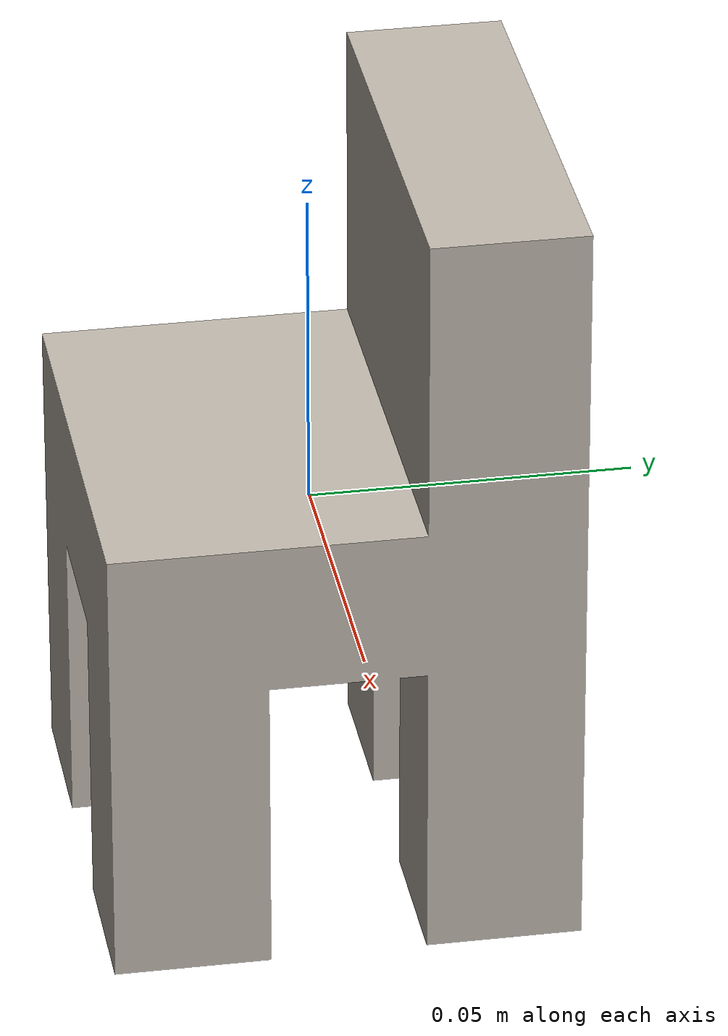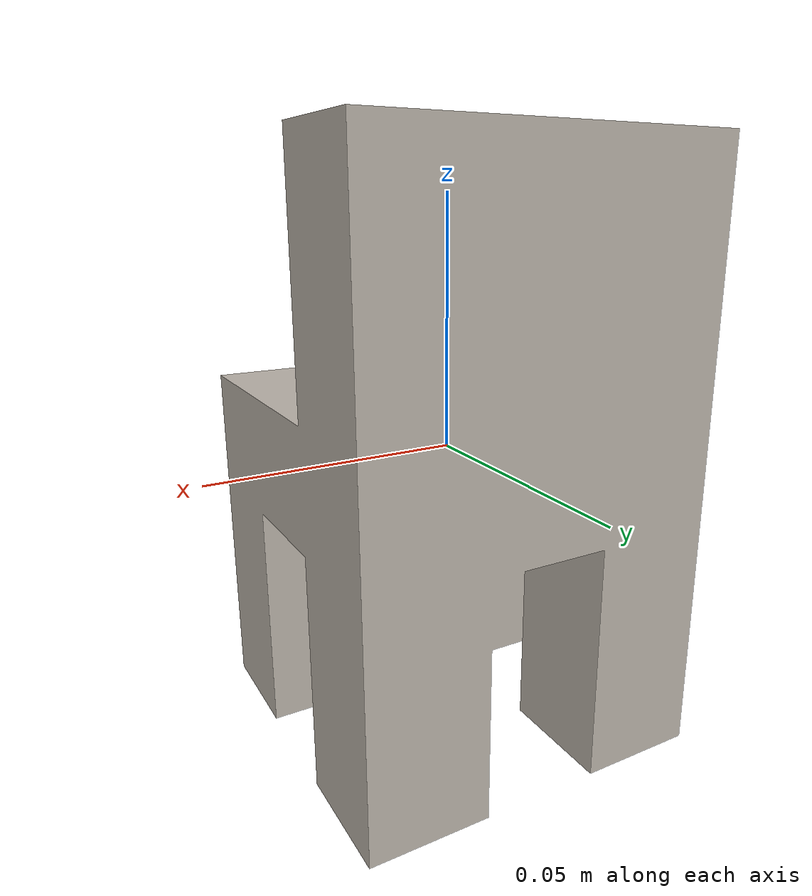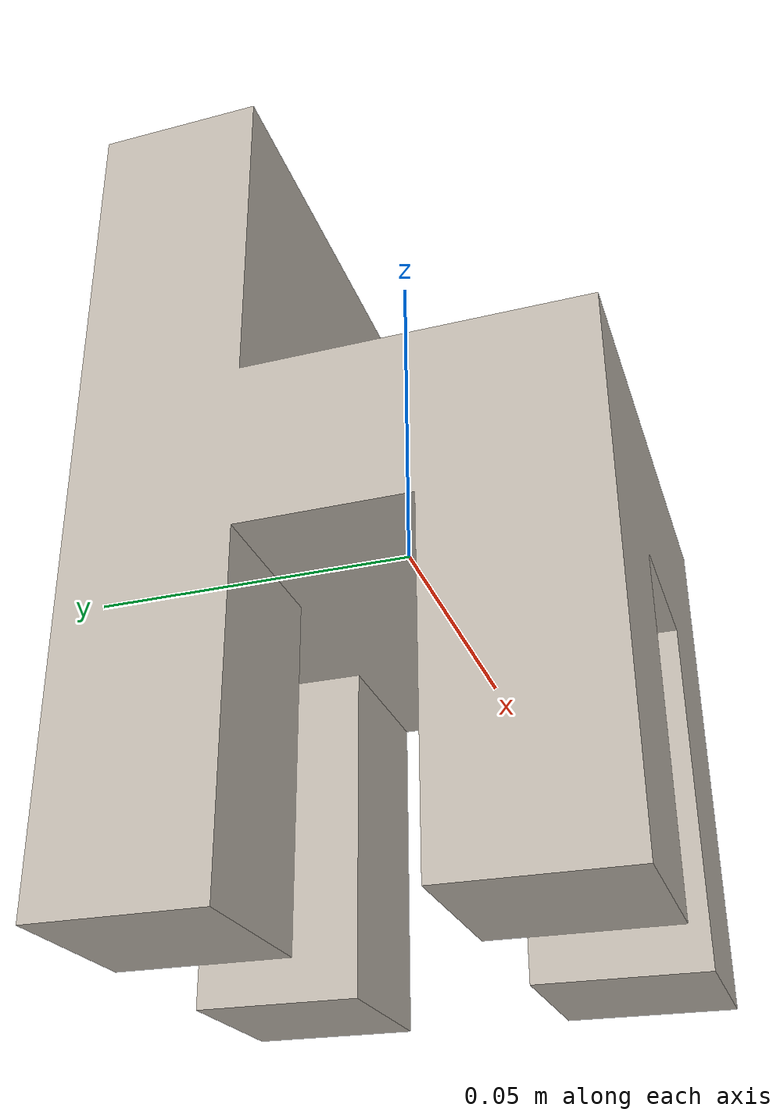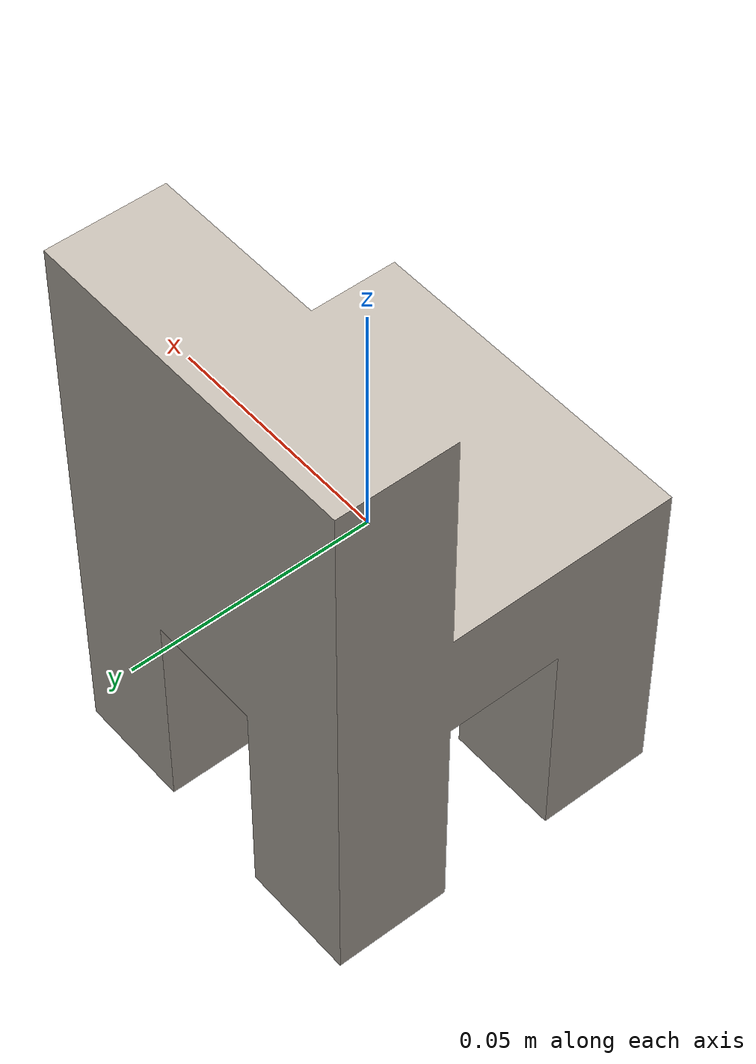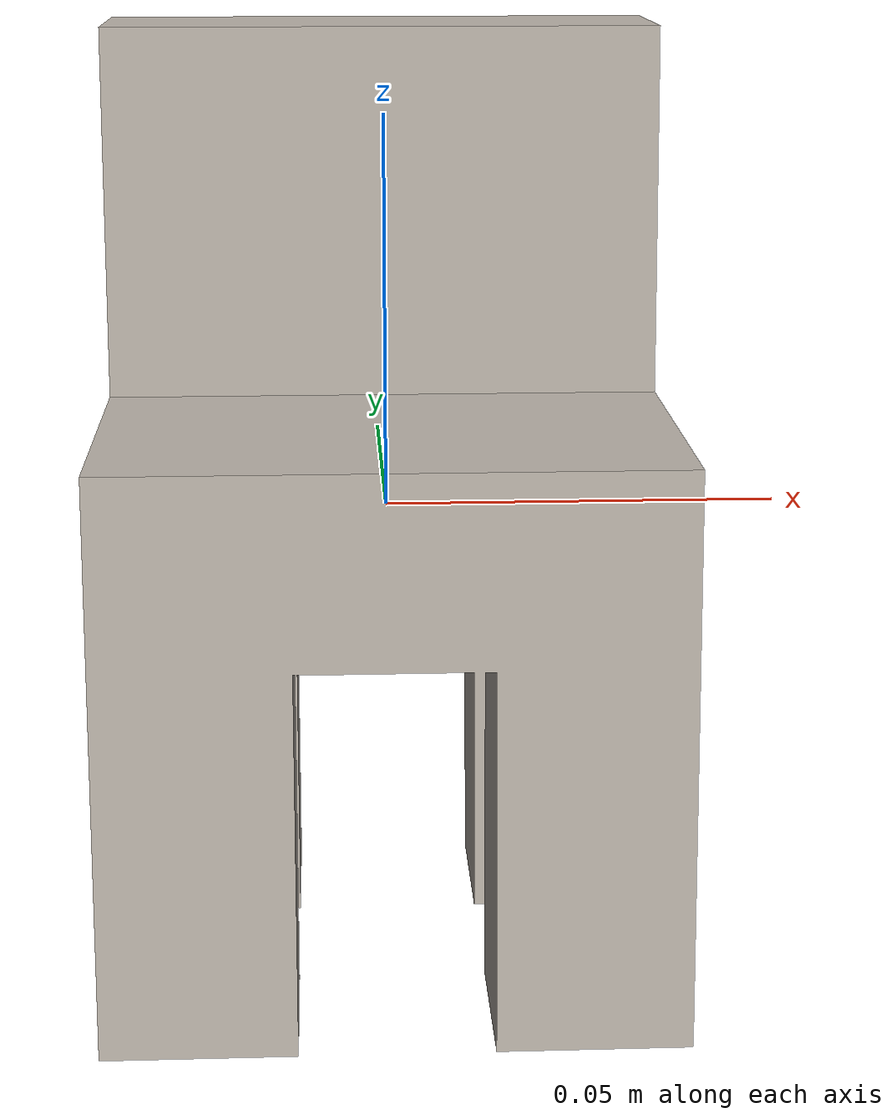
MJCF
<?xml version="1.0" encoding="UTF-8"?>
<mujoco model="aprilcube_voxel_target">
  <!-- Bounding box: 72 x 72 x 120 mm -->
  <!-- Origin at target center, units in meters -->

  <compiler angle="radian" meshdir="."/>

  <asset>
    <texture name="cube_tex" type="2d" file="cube_atlas.png"/>
    <material name="cube_mat" texture="cube_tex" specular="0.1" shininess="0.1"/>
    <mesh name="cube_mesh" file="cube.obj"/>
  </asset>

  <worldbody>
    <body name="cube" pos="0 0 0">
      <freejoint name="cube_joint"/>
      <geom name="cube_visual" type="mesh" mesh="cube_mesh" material="cube_mat" contype="0" conaffinity="0" group="1" density="0"/>
      <geom name="front_left_leg_collision" type="box" pos="-0.024000 -0.024000 -0.036000" size="0.012000 0.012000 0.024000" density="1250" rgba="0.5 0.5 0.5 0" contype="1" conaffinity="1" group="2"/>
      <geom name="front_right_leg_collision" type="box" pos="0.024000 -0.024000 -0.036000" size="0.012000 0.012000 0.024000" density="1250" rgba="0.5 0.5 0.5 0" contype="1" conaffinity="1" group="2"/>
      <geom name="rear_left_leg_collision" type="box" pos="-0.024000 0.024000 -0.036000" size="0.012000 0.012000 0.024000" density="1250" rgba="0.5 0.5 0.5 0" contype="1" conaffinity="1" group="2"/>
      <geom name="rear_right_leg_collision" type="box" pos="0.024000 0.024000 -0.036000" size="0.012000 0.012000 0.024000" density="1250" rgba="0.5 0.5 0.5 0" contype="1" conaffinity="1" group="2"/>
      <geom name="seat_collision" type="box" pos="0.000000 0.000000 0.000000" size="0.036000 0.036000 0.012000" density="1250" rgba="0.5 0.5 0.5 0" contype="1" conaffinity="1" group="2"/>
      <geom name="backrest_collision" type="box" pos="0.000000 0.024000 0.036000" size="0.036000 0.012000 0.024000" density="1250" rgba="0.5 0.5 0.5 0" contype="1" conaffinity="1" group="2"/>
      <site name="cube_center" pos="0 0 0" size="0.001"/>
    </body>
  </worldbody>
</mujoco>
